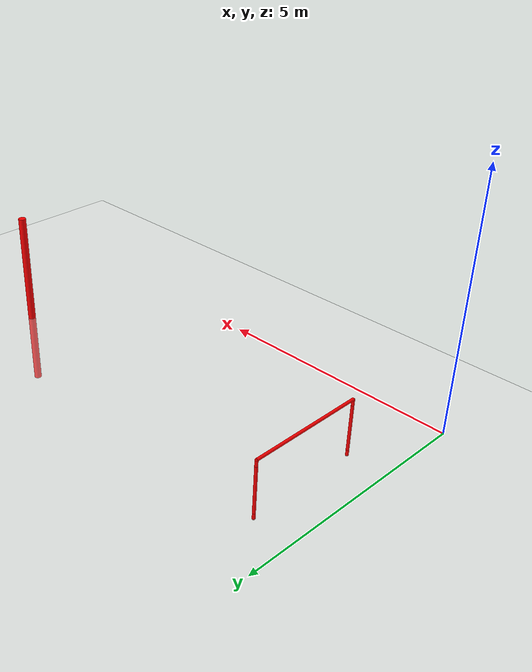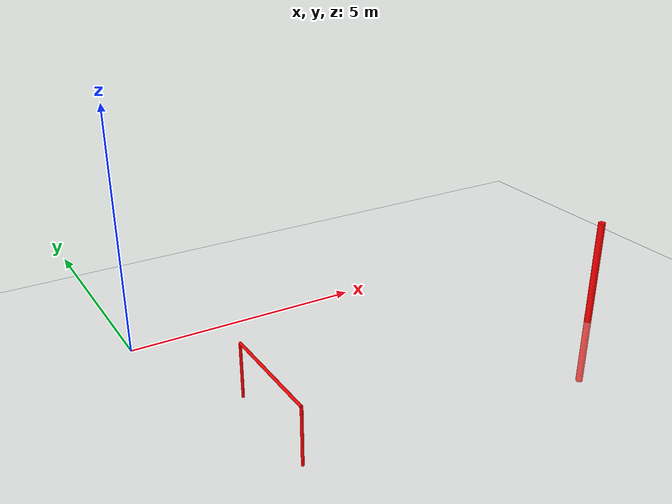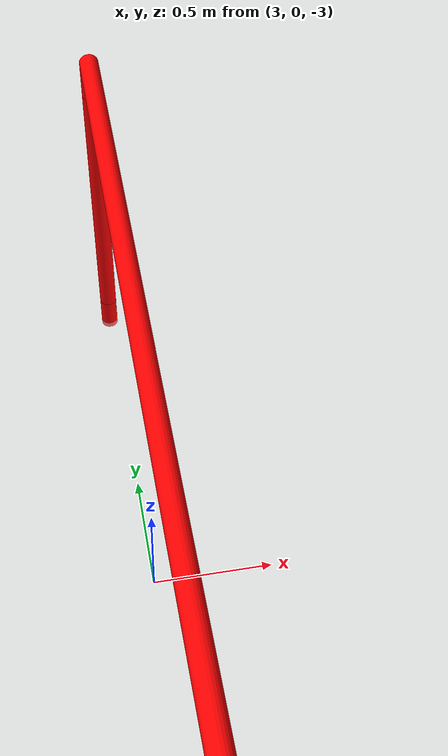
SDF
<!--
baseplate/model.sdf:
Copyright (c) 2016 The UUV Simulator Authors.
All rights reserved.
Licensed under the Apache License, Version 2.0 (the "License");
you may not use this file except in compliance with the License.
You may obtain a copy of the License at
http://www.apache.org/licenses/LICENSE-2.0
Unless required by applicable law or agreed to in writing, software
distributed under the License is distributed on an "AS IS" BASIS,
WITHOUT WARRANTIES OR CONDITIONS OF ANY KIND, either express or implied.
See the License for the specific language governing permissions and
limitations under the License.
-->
<sdf version="1.6">
 <world name="main">
  <plugin filename="gz-sim-physics-system" name="gz::sim::systems::Physics"/>
  <plugin filename="gz-sim-user-commands-system" name="gz::sim::systems::UserCommands"/>
  <plugin filename="gz-sim-scene-broadcaster-system" name="gz::sim::systems::SceneBroadcaster"/>
  <plugin filename="gz-sim-sensors-system" name="gz::sim::systems::Sensors"/>
  <plugin filename="libgz-sim-imu-system.so" name="gz::sim::systems::Imu"/>
  <plugin filename="gz-sim-buoyancy-system" name="gz::sim::systems::Buoyancy">
   <graded_buoyancy>
    <default_density>1000</default_density>
    <density_change><above_depth>0</above_depth><density>1</density></density_change>
   </graded_buoyancy>
   <enable>orca4</enable>
  </plugin>
  <include><uri>https://fuel.gazebosim.org/1.0/OpenRobotics/models/Sun</uri></include>
  <include><uri>model://baseplate</uri><pose>0 7 -3 0 0 0</pose></include>
  <include><uri>model://marker</uri><pose>13 0 -2.5 0 0 0</pose></include>
  <include><uri>model://gate</uri><pose>3 0 -1.5 0 0 1.57</pose></include>
 </world>
</sdf>

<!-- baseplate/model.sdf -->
<sdf version="1.6">
<model name="baseplate">
            <static>true</static>
            <link name="link">
                <collision name="collision">
                <geometry>
                    <plane>
                    <normal>0 0 1</normal>
                    </plane>
                </geometry>
                </collision>
                <visual name="visual">
                <geometry>
                    <plane>
                    <normal>0 0 1</normal>
                    <size>100 100</size>
                    </plane>
                </geometry>
                <material>
          <ambient>1 1 1 1</ambient>
          <diffuse>1 1 1 1</diffuse>
          <specular>0.1 0.1 0.1 0.1</specular>
          <pbr>
            <metal>
              <albedo_map>materials/tiles.jpg</albedo_map>
              <normal_map>materials/flat_normal.png</normal_map>
              <roughness>0.1</roughness>
              <metalness>0.01</metalness>
            </metal>
          </pbr>
                </material>
                </visual>
            </link>
        </model>
</sdf>

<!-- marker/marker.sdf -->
<sdf version='1.5'>

  <model name='marker'>
    <pose>0 0 0 0 0 0</pose>
    <self_collide> 0 </self_collide>

    <link name='marker'>
      <pose> 0 0 0 0 0 0</pose>
     <inertial>
        <mass>0.05</mass>
        </inertial>
      <visual name='marker_vis'>
        <geometry>
          <cylinder>
            <radius>0.1</radius>
            <length>5</length>
          </cylinder>
        </geometry>
        <material>
          <ambient>1 0 0 1</ambient>
          <diffuse>1 0 0 1</diffuse>
          <specular>0.1 0.1 0.1 1</specular>
        </material>
      </visual>
      <collision name='marker_collision'>
        <geometry>
          <sphere><radius>0.02</radius></sphere>
        </geometry>
      </collision>
    </link>
  </model>
</sdf>

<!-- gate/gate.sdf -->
<sdf version='1.5'>

  <model name='gate'>
    <pose>0 0 0 0 0 0</pose>
    <self_collide> 0 </self_collide>
    <static>1</static>

    <link name='gate_top'>
      <pose>0 0 0 0 1.5707 0</pose>
      <visual name='gate_top_vis'>
        <geometry>
          <cylinder>
            <radius>0.0381</radius>
            <length>3.05</length>
          </cylinder>
        </geometry>
        <material>
            <ambient>1.0 0.0 0.0 1</ambient>
            <diffuse>1.0 0.0 0.0 1</diffuse>
            <specular>1.0 0.0 0.0 1</specular>
        </material>
      </visual>
      <collision name='gate_top_collide'>
        <geometry>
          <cylinder>
            <radius>0.0381</radius>
            <length>3.05</length>
          </cylinder>
        </geometry>
      </collision>
    </link>

    <link name='gate_right'>
      <pose>1.525 0 -0.762 0 0 0</pose>
      <visual name='gate_right_vis'>
        <geometry>
          <cylinder>
            <radius>0.0381</radius>
            <length>1.21</length>
          </cylinder>
        </geometry>
        <material>
            <ambient>1.0 0.0 0.0 1</ambient>
            <diffuse>1.0 0.0 0.0 1</diffuse>
            <specular>1.0 0.0 0.0 1</specular>
        </material>
      </visual>
      <visual name='gate_right_top'>
        <pose>0 0 0.6858 0 0 0</pose>
        <geometry>
          <cylinder>
            <radius>0.0381</radius>
            <length>0.16</length>
          </cylinder>
        </geometry>
        <material>
          <ambient>1.0 0.0 0.0 1</ambient>
            <diffuse>1.0 0.0 0.0 1</diffuse>
            <specular>1.0 0.0 0.0 1</specular>
        </material>
      </visual>
      <visual name='gate_right_bottom'>
        <pose>0 0 -0.6858 0 0 0</pose>
        <geometry>
          <cylinder>
            <radius>0.0381</radius>
            <length>0.16</length>
          </cylinder>
        </geometry>
        <material>
          <ambient>1.0 0.0 0.0 1</ambient>
            <diffuse>1.0 0.0 0.0 1</diffuse>
            <specular>1.0 0.0 0.0 1</specular>
        </material>
      </visual>
      <collision name='gate_right_collide'>
        <geometry>
          <cylinder>
            <radius>0.0381</radius>
            <length>1.52</length>
          </cylinder>
        </geometry>
      </collision>
    </link>

    <link name='gate_left'>
      <pose>-1.525 0 -0.762 0 0 0</pose>
      <visual name='gate_left_vis'>
        <geometry>
          <cylinder>
            <radius>0.0381</radius>
            <length>1.21</length>
          </cylinder>
        </geometry>
        <material>
          <ambient>1.0 0.0 0.0 1</ambient>
          <diffuse>1.0 0.0 0.0 1</diffuse>
          <specular>1.0 0.0 0.0 1</specular>
        </material>
      </visual>
      <visual name='gate_left_top'>
        <pose>0 0 0.6858 0 0 0</pose>
        <geometry>
          <cylinder>
            <radius>0.0381</radius>
            <length>0.16</length>
          </cylinder>
        </geometry>
        <material>
          <ambient>1.0 0.0 0.0 1</ambient>
          <diffuse>1.0 0.0 0.0 1</diffuse>
          <specular>1.0 0.0 0.0 1</specular>
        </material>
      </visual>
      <visual name='gate_left_bottom'>
        <pose>0 0 -0.6858 0 0 0</pose>
        <geometry>
          <cylinder>
            <radius>0.0381</radius>
            <length>0.16</length>
          </cylinder>
        </geometry>
        <material>
          <ambient>1.0 0.0 0.0 1</ambient>
          <diffuse>1.0 0.0 0.0 1</diffuse>
          <specular>1.0 0.0 0.0 1</specular>
        </material>
      </visual>
      <collision name='gate_left_collide'>
        <geometry>
          <cylinder>
            <radius>0.0381</radius>
            <length>1.52</length>
          </cylinder>
        </geometry>
      </collision>
    </link>

  </model>
</sdf>
